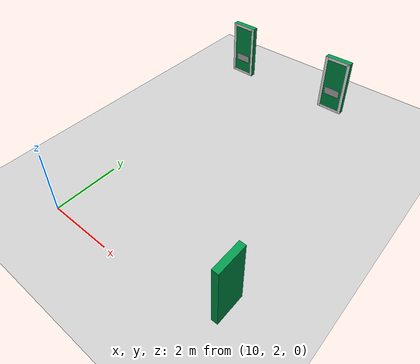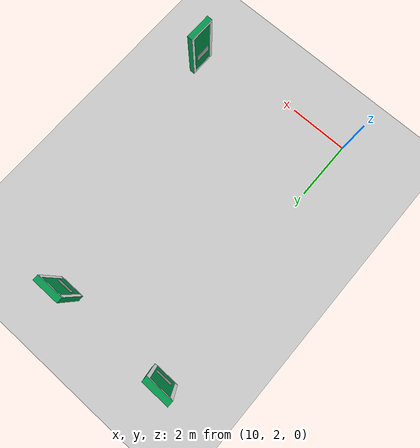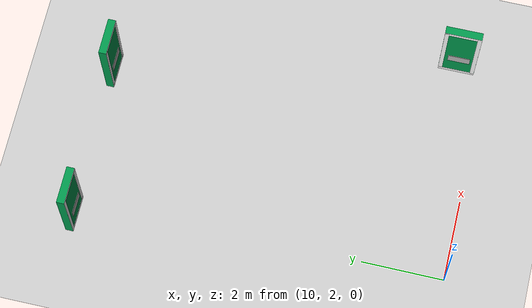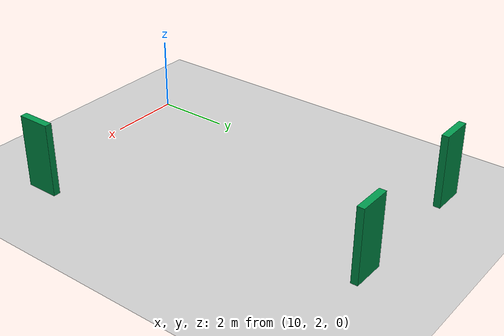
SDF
<sdf version="1.7">
 <world name="default">
  <model name="ground_plane">
   <static>1</static>
   <link name="link">
    <collision name="collision">
     <geometry><plane><normal>0 0 1</normal><size>100 100</size></plane></geometry>
     <surface><friction><ode><mu>100</mu><mu2>50</mu2></ode></friction></surface>
    </collision>
    <visual name="visual">
     <cast_shadows>0</cast_shadows>
     <geometry><plane><normal>0 0 1</normal><size>100 100</size></plane></geometry>
     <material>
      <script><uri>file://media/materials/scripts/gazebo.material</uri><name>Gazebo/Grey</name></script>
     </material>
    </visual>
   </link>
  </model>
  <model name="fire_exit_green_0">
   <link name="link_1">
    <pose>0 0 0.993 0 -0 0</pose>
    <visual name="visual">
     <geometry><box><size>0.891572 0.186765 1.98613</size></box></geometry>
     <material>
      <ambient>0 0.6 0.3 1</ambient>
      <diffuse>0 0.6 0.3 1</diffuse>
      <specular>0.2 0.2 0.2 1</specular>
     </material>
    </visual>
    <visual name="border_left">
     <pose>0.395 0.094 0 0 -0 0</pose>
     <geometry><box><size>0.1 0.002 1.986</size></box></geometry>
     <material><ambient>1 1 1 1</ambient><diffuse>1 1 1 1</diffuse></material>
    </visual>
    <visual name="border_right">
     <pose>-0.395 0.094 0 0 -0 0</pose>
     <geometry><box><size>0.1 0.002 1.986</size></box></geometry>
     <material><ambient>1 1 1 1</ambient><diffuse>1 1 1 1</diffuse></material>
    </visual>
    <visual name="border_top">
     <pose>0 0.094 0.943 0 -0 0</pose>
     <geometry><box><size>0.891 0.002 0.1</size></box></geometry>
     <material><ambient>1 1 1 1</ambient><diffuse>1 1 1 1</diffuse></material>
    </visual>
    <visual name="border_bottom">
     <pose>0 0.094 -0.943 0 -0 0</pose>
     <geometry><box><size>0.891 0.002 0.1</size></box></geometry>
     <material><ambient>1 1 1 1</ambient><diffuse>1 1 1 1</diffuse></material>
    </visual>
    <collision name="collision"><geometry><box><size>0.891572 0.186765 1.98613</size></box></geometry></collision>
    <inertial>
     <inertia><ixx>1</ixx><ixy>0</ixy><ixz>0</ixz><iyy>1</iyy><iyz>0</iyz><izz>1</izz></inertia>
     <mass>1</mass>
    </inertial>
   </link>
   <static>0</static>
   <pose>9.66578 10.9474 0.005065 -0 -1e-06 3.13478</pose>
  </model>
  <model name="fire_exit_green_1">
   <link name="link_1">
    <pose>0 0 0.993 0 -0 0</pose>
    <visual name="visual">
     <geometry><box><size>0.891572 0.186765 1.98613</size></box></geometry>
     <material>
      <ambient>0 0.6 0.3 1</ambient>
      <diffuse>0 0.6 0.3 1</diffuse>
      <specular>0.2 0.2 0.2 1</specular>
     </material>
    </visual>
    <visual name="border_left">
     <pose>0.395 0.094 0 0 -0 0</pose>
     <geometry><box><size>0.1 0.002 1.986</size></box></geometry>
     <material><ambient>1 1 1 1</ambient><diffuse>1 1 1 1</diffuse></material>
    </visual>
    <visual name="border_right">
     <pose>-0.395 0.094 0 0 -0 0</pose>
     <geometry><box><size>0.1 0.002 1.986</size></box></geometry>
     <material><ambient>1 1 1 1</ambient><diffuse>1 1 1 1</diffuse></material>
    </visual>
    <visual name="border_top">
     <pose>0 0.094 0.943 0 -0 0</pose>
     <geometry><box><size>0.891 0.002 0.1</size></box></geometry>
     <material><ambient>1 1 1 1</ambient><diffuse>1 1 1 1</diffuse></material>
    </visual>
    <visual name="border_bottom">
     <pose>0 0.094 -0.943 0 -0 0</pose>
     <geometry><box><size>0.891 0.002 0.1</size></box></geometry>
     <material><ambient>1 1 1 1</ambient><diffuse>1 1 1 1</diffuse></material>
    </visual>
    <collision name="collision"><geometry><box><size>0.891572 0.186765 1.98613</size></box></geometry></collision>
    <inertial>
     <inertia><ixx>1</ixx><ixy>0</ixy><ixz>0</ixz><iyy>1</iyy><iyz>0</iyz><izz>1</izz></inertia>
     <mass>1</mass>
    </inertial>
   </link>
   <static>0</static>
   <pose>13.4937 10.9513 0.006059 0.010647 -0 3.13679</pose>
  </model>
  <model name="fire_exit_green_2">
   <link name="link_1">
    <pose>0 0 0.993 0 -0 0</pose>
    <visual name="visual">
     <geometry><box><size>0.891572 0.186765 1.98613</size></box></geometry>
     <material>
      <ambient>0 0.6 0.3 1</ambient>
      <diffuse>0 0.6 0.3 1</diffuse>
      <specular>0.2 0.2 0.2 1</specular>
     </material>
    </visual>
    <visual name="border_left">
     <pose>0.395 0.094 0 0 -0 0</pose>
     <geometry><box><size>0.1 0.002 1.986</size></box></geometry>
     <material><ambient>1 1 1 1</ambient><diffuse>1 1 1 1</diffuse></material>
    </visual>
    <visual name="border_right">
     <pose>-0.395 0.094 0 0 -0 0</pose>
     <geometry><box><size>0.1 0.002 1.986</size></box></geometry>
     <material><ambient>1 1 1 1</ambient><diffuse>1 1 1 1</diffuse></material>
    </visual>
    <visual name="border_top">
     <pose>0 0.094 0.943 0 -0 0</pose>
     <geometry><box><size>0.891 0.002 0.1</size></box></geometry>
     <material><ambient>1 1 1 1</ambient><diffuse>1 1 1 1</diffuse></material>
    </visual>
    <visual name="border_bottom">
     <pose>0 0.094 -0.943 0 -0 0</pose>
     <geometry><box><size>0.891 0.002 0.1</size></box></geometry>
     <material><ambient>1 1 1 1</ambient><diffuse>1 1 1 1</diffuse></material>
    </visual>
    <collision name="collision"><geometry><box><size>0.891572 0.186765 1.98613</size></box></geometry></collision>
    <inertial>
     <inertia><ixx>1</ixx><ixy>0</ixy><ixz>0</ixz><iyy>1</iyy><iyz>0</iyz><izz>1</izz></inertia>
     <mass>1</mass>
    </inertial>
   </link>
   <static>0</static>
   <pose>15.4332 2.74303 0.006183 0.011982 -1e-06 1.5708</pose>
  </model>
  <model name="poster_1">
   <static>1</static>
   <link name="link_0">
    <visual name="visual">
     <geometry><box><size>0.01 0.537989 0.266526</size></box></geometry>
     <material>
      <script>
       <uri>model://poster/materials/scripts</uri>
       <uri>model://poster/materials/textures</uri>
       <name>FireExit/Label</name>
      </script>
     </material>
    </visual>
    <collision name="collision"><geometry><box><size>0.01 0.537989 0.266526</size></box></geometry></collision>
   </link>
   <pose>15.3417 2.7317 0.713547 0 -0 0</pose>
  </model>
  <model name="poster_2">
   <static>1</static>
   <link name="link_0">
    <visual name="visual">
     <geometry><box><size>0.01 0.537989 0.266526</size></box></geometry>
     <material>
      <script>
       <uri>model://poster/materials/scripts</uri>
       <uri>model://poster/materials/textures</uri>
       <name>FireExit/Label</name>
      </script>
     </material>
    </visual>
    <collision name="collision"><geometry><box><size>0.01 0.537989 0.266526</size></box></geometry></collision>
   </link>
   <pose>13.4898 10.8593 0.736533 0 -0 1.56599</pose>
  </model>
  <model name="poster_3">
   <static>1</static>
   <link name="link_0">
    <visual name="visual">
     <geometry><box><size>0.01 0.537989 0.266526</size></box></geometry>
     <material>
      <script>
       <uri>model://poster/materials/scripts</uri>
       <uri>model://poster/materials/textures</uri>
       <name>FireExit/Label</name>
      </script>
     </material>
    </visual>
    <collision name="collision"><geometry><box><size>0.01 0.537989 0.266526</size></box></geometry></collision>
   </link>
   <pose>9.68327 10.8475 0.666749 0 -0 1.56261</pose>
  </model>
 </world>
</sdf>
